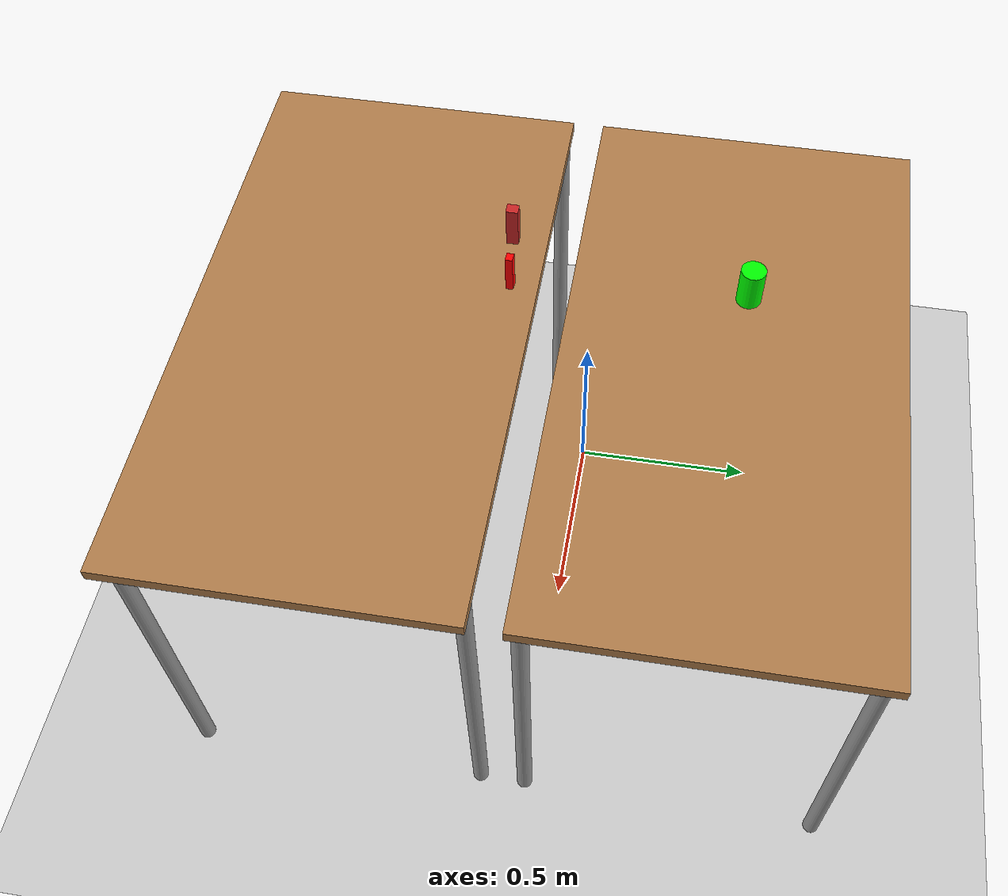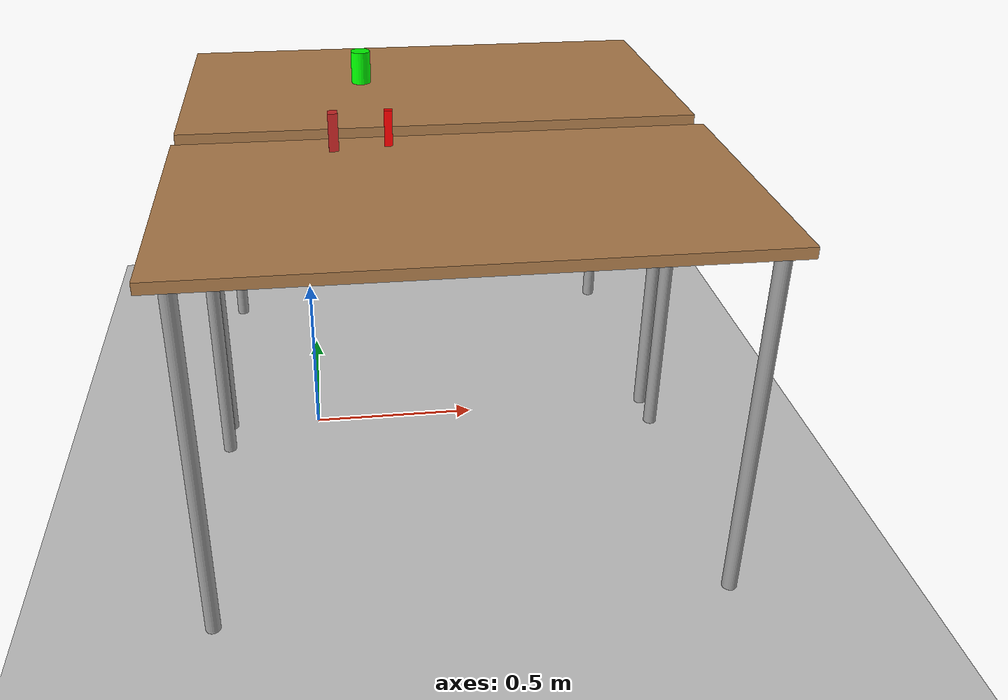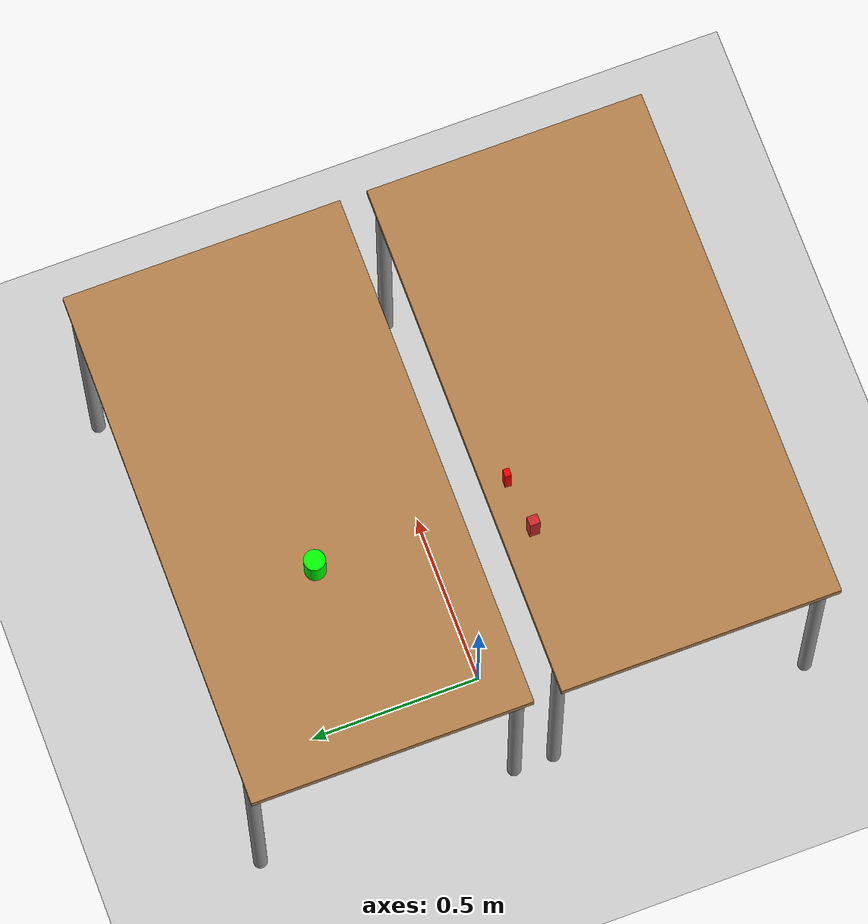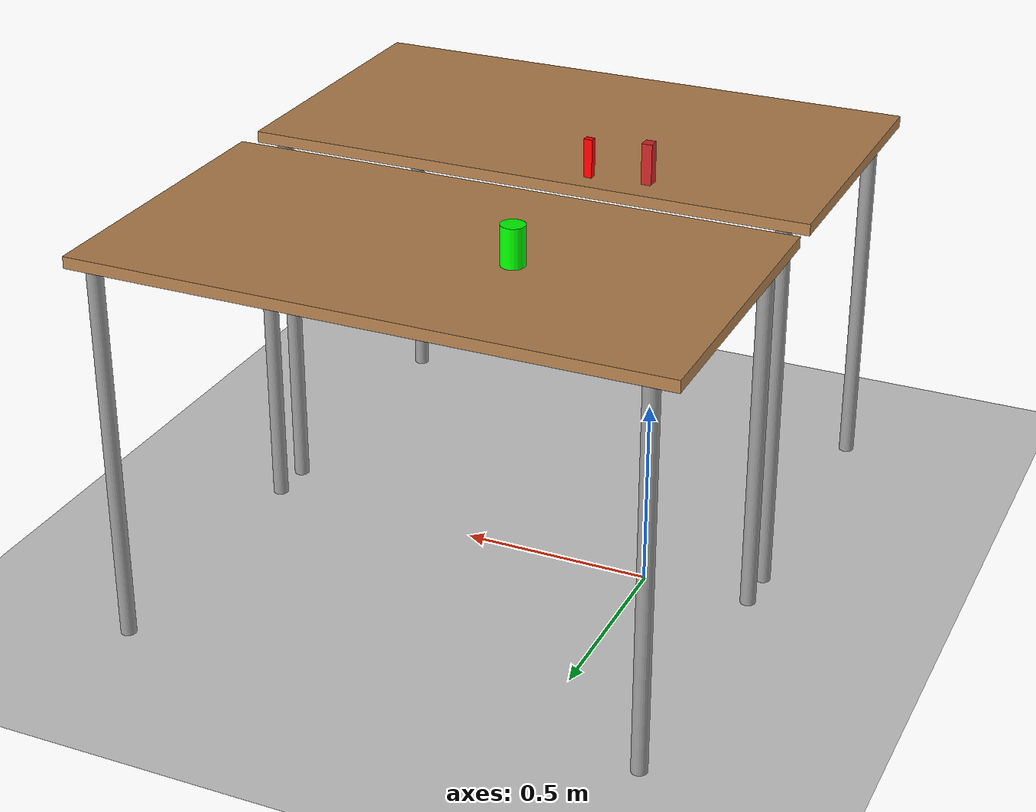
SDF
<sdf version="1.6">
 <world name="default">
  <light name="sun" type="directional">
   <pose>0 0 10 0 -0 0</pose>
   <diffuse>0.8 0.8 0.8 1</diffuse>
   <specular>0.2 0.2 0.2 1</specular>
   <attenuation>
    <range>1000</range>
    <constant>0.9</constant>
    <linear>0.01</linear>
    <quadratic>0.001</quadratic>
   </attenuation>
   <direction>-0.5 0.1 -0.9</direction>
  </light>
  <model name="ground_plane">
   <static>1</static>
   <link name="link">
    <collision name="collision">
     <geometry><plane><normal>0 0 1</normal><size>100 100</size></plane></geometry>
     <surface>
      <contact><collide_bitmask>65535</collide_bitmask></contact>
      <friction><ode><mu>100</mu><mu2>50</mu2></ode></friction>
     </surface>
    </collision>
    <visual name="visual">
     <cast_shadows>0</cast_shadows>
     <geometry><plane><normal>0 0 1</normal><size>100 100</size></plane></geometry>
     <material>
      <script><uri>file://media/materials/scripts/gazebo.material</uri><name>Gazebo/Grey</name></script>
     </material>
    </visual>
   </link>
  </model>
  <gravity>0 0 -9.8</gravity>
  <magnetic_field>6e-06 2.3e-05 -4.2e-05</magnetic_field>
  <atmosphere type="adiabatic"/>
  <physics name="default_physics" default="0" type="ode">
   <max_step_size>0.001</max_step_size>
   <real_time_factor>1</real_time_factor>
   <real_time_update_rate>1000</real_time_update_rate>
  </physics>
  <scene><ambient>0.4 0.4 0.4 1</ambient><background>0.7 0.7 0.7 1</background><shadows>1</shadows></scene>
  <audio><device>default</device></audio>
  <spherical_coordinates>
   <surface_model>EARTH_WGS84</surface_model>
   <latitude_deg>0</latitude_deg>
   <longitude_deg>0</longitude_deg>
   <elevation>0</elevation>
   <heading_deg>0</heading_deg>
  </spherical_coordinates>
  <model name="table">
   <static>1</static>
   <link name="link">
    <collision name="surface">
     <pose>0 0 1 0 -0 0</pose>
     <geometry><box><size>1.5 0.8 0.03</size></box></geometry>
     <surface><friction><ode><mu>0.6</mu><mu2>0.6</mu2></ode></friction></surface>
    </collision>
    <visual name="visual1">
     <pose>0 0 1 0 -0 0</pose>
     <geometry><box><size>1.5 0.8 0.03</size></box></geometry>
     <material>
      <script><uri>file://media/materials/scripts/gazebo.material</uri><name>Gazebo/Wood</name></script>
     </material>
    </visual>
    <collision name="front_left_leg">
     <pose>0.68 0.38 0.5 0 -0 0</pose>
     <geometry><cylinder><radius>0.02</radius><length>1</length></cylinder></geometry>
    </collision>
    <visual name="front_left_leg">
     <pose>0.68 0.38 0.5 0 -0 0</pose>
     <geometry><cylinder><radius>0.02</radius><length>1</length></cylinder></geometry>
     <material>
      <script><uri>file://media/materials/scripts/gazebo.material</uri><name>Gazebo/Grey</name></script>
     </material>
    </visual>
    <collision name="front_right_leg">
     <pose>0.68 -0.38 0.5 0 -0 0</pose>
     <geometry><cylinder><radius>0.02</radius><length>1</length></cylinder></geometry>
    </collision>
    <visual name="front_right_leg">
     <pose>0.68 -0.38 0.5 0 -0 0</pose>
     <geometry><cylinder><radius>0.02</radius><length>1</length></cylinder></geometry>
     <material>
      <script><uri>file://media/materials/scripts/gazebo.material</uri><name>Gazebo/Grey</name></script>
     </material>
    </visual>
    <collision name="back_right_leg">
     <pose>-0.68 -0.38 0.5 0 -0 0</pose>
     <geometry><cylinder><radius>0.02</radius><length>1</length></cylinder></geometry>
    </collision>
    <visual name="back_right_leg">
     <pose>-0.68 -0.38 0.5 0 -0 0</pose>
     <geometry><cylinder><radius>0.02</radius><length>1</length></cylinder></geometry>
     <material>
      <script><uri>file://media/materials/scripts/gazebo.material</uri><name>Gazebo/Grey</name></script>
     </material>
    </visual>
    <collision name="back_left_leg">
     <pose>-0.68 0.38 0.5 0 -0 0</pose>
     <geometry><cylinder><radius>0.02</radius><length>1</length></cylinder></geometry>
    </collision>
    <visual name="back_left_leg">
     <pose>-0.68 0.38 0.5 0 -0 0</pose>
     <geometry><cylinder><radius>0.02</radius><length>1</length></cylinder></geometry>
     <material>
      <script><uri>file://media/materials/scripts/gazebo.material</uri><name>Gazebo/Grey</name></script>
     </material>
    </visual>
   </link>
   <pose>0.4 0.377133 0 0 -0 0</pose>
  </model>
  <model name="table_clone">
   <static>1</static>
   <link name="link">
    <collision name="surface">
     <pose>0 0 1 0 -0 0</pose>
     <geometry><box><size>1.5 0.8 0.03</size></box></geometry>
     <surface><friction><ode><mu>0.6</mu><mu2>0.6</mu2></ode></friction></surface>
    </collision>
    <visual name="visual1">
     <pose>0 0 1 0 -0 0</pose>
     <geometry><box><size>1.5 0.8 0.03</size></box></geometry>
     <material>
      <script><uri>file://media/materials/scripts/gazebo.material</uri><name>Gazebo/Wood</name></script>
     </material>
    </visual>
    <collision name="front_left_leg">
     <pose>0.68 0.38 0.5 0 -0 0</pose>
     <geometry><cylinder><radius>0.02</radius><length>1</length></cylinder></geometry>
    </collision>
    <visual name="front_left_leg">
     <pose>0.68 0.38 0.5 0 -0 0</pose>
     <geometry><cylinder><radius>0.02</radius><length>1</length></cylinder></geometry>
     <material>
      <script><uri>file://media/materials/scripts/gazebo.material</uri><name>Gazebo/Grey</name></script>
     </material>
    </visual>
    <collision name="front_right_leg">
     <pose>0.68 -0.38 0.5 0 -0 0</pose>
     <geometry><cylinder><radius>0.02</radius><length>1</length></cylinder></geometry>
    </collision>
    <visual name="front_right_leg">
     <pose>0.68 -0.38 0.5 0 -0 0</pose>
     <geometry><cylinder><radius>0.02</radius><length>1</length></cylinder></geometry>
     <material>
      <script><uri>file://media/materials/scripts/gazebo.material</uri><name>Gazebo/Grey</name></script>
     </material>
    </visual>
    <collision name="back_right_leg">
     <pose>-0.68 -0.38 0.5 0 -0 0</pose>
     <geometry><cylinder><radius>0.02</radius><length>1</length></cylinder></geometry>
    </collision>
    <visual name="back_right_leg">
     <pose>-0.68 -0.38 0.5 0 -0 0</pose>
     <geometry><cylinder><radius>0.02</radius><length>1</length></cylinder></geometry>
     <material>
      <script><uri>file://media/materials/scripts/gazebo.material</uri><name>Gazebo/Grey</name></script>
     </material>
    </visual>
    <collision name="back_left_leg">
     <pose>-0.68 0.38 0.5 0 -0 0</pose>
     <geometry><cylinder><radius>0.02</radius><length>1</length></cylinder></geometry>
    </collision>
    <visual name="back_left_leg">
     <pose>-0.68 0.38 0.5 0 -0 0</pose>
     <geometry><cylinder><radius>0.02</radius><length>1</length></cylinder></geometry>
     <material>
      <script><uri>file://media/materials/scripts/gazebo.material</uri><name>Gazebo/Grey</name></script>
     </material>
    </visual>
   </link>
   <pose>0.4 -0.50117 0 0 -0 0</pose>
  </model>
  <model name="red_box">
   <link name="link">
    <inertial>
     <mass>0.1</mass>
     <inertia>
      <ixx>0.00010417</ixx>
      <ixy>0</ixy>
      <ixz>0</ixz>
      <iyy>0.00010417</iyy>
      <iyz>0</iyz>
      <izz>4.167e-05</izz>
     </inertia>
    </inertial>
    <visual name="visual">
     <geometry><box><size>0.0221781 0.017834 0.100019</size></box></geometry>
     <material>
      <script><name>Gazebo/Grey</name><uri>file://media/materials/scripts/gazebo.material</uri></script>
      <shader type="vertex"><normal_map>__default__</normal_map></shader>
      <ambient>1 0 0 1</ambient>
      <diffuse>1 0 0 1</diffuse>
      <specular>1 0 0 1</specular>
      <emissive>1 0 0 1</emissive>
     </material>
    </visual>
    <collision name="collision">
     <geometry><box><size>0.0221781 0.017834 0.100019</size></box></geometry>
     <surface>
      <friction>
       <ode><mu>1</mu><mu2>1</mu2><fdir1>0 0 0</fdir1><slip1>0</slip1><slip2>0</slip2></ode>
       <torsional>
        <coefficient>1</coefficient>
        <patch_radius>0</patch_radius>
        <surface_radius>0</surface_radius>
        <use_patch_radius>1</use_patch_radius>
        <ode><slip>0</slip></ode>
       </torsional>
      </friction>
      <bounce><restitution_coefficient>0</restitution_coefficient><threshold>1e+06</threshold></bounce>
      <contact>
       <collide_without_contact>0</collide_without_contact>
       <collide_without_contact_bitmask>1</collide_without_contact_bitmask>
       <collide_bitmask>1</collide_bitmask>
       <ode>
        <soft_cfm>0</soft_cfm>
        <soft_erp>0.2</soft_erp>
        <kp>1e+13</kp>
        <kd>1</kd>
        <max_vel>0.01</max_vel>
        <min_depth>0</min_depth>
       </ode>
       <bullet>
        <split_impulse>1</split_impulse>
        <split_impulse_penetration_threshold>-0.01</split_impulse_penetration_threshold>
        <soft_cfm>0</soft_cfm>
        <soft_erp>0.2</soft_erp>
        <kp>1e+13</kp>
        <kd>1</kd>
       </bullet>
      </contact>
     </surface>
    </collision>
   </link>
   <static>0</static>
   <pose>0.241992 -0.167357 1.06501 -1e-05 1.5e-05 -0.061695</pose>
  </model>
  <model name="green_cylinder">
   <link name="link">
    <inertial>
     <mass>0.1</mass>
     <inertia>
      <ixx>0.00010583</ixx>
      <ixy>0</ixy>
      <ixz>0</ixz>
      <iyy>0.00010583</iyy>
      <iyz>0</iyz>
      <izz>4.5e-05</izz>
     </inertia>
    </inertial>
    <visual name="visual">
     <geometry><cylinder><radius>0.03</radius><length>0.1</length></cylinder></geometry>
     <material>
      <script><name>Gazebo/Grey</name><uri>file://media/materials/scripts/gazebo.material</uri></script>
      <shader type="vertex"><normal_map>__default__</normal_map></shader>
      <ambient>0 1 0 1</ambient>
      <diffuse>0 1 0 1</diffuse>
      <specular>0 1 0 1</specular>
      <emissive>0 1 0 1</emissive>
     </material>
    </visual>
    <collision name="collision">
     <geometry><cylinder><radius>0.03</radius><length>0.1</length></cylinder></geometry>
     <surface>
      <friction>
       <ode><mu>1</mu><mu2>1</mu2><fdir1>0 0 0</fdir1><slip1>0</slip1><slip2>0</slip2></ode>
       <torsional>
        <coefficient>1</coefficient>
        <patch_radius>0</patch_radius>
        <surface_radius>0</surface_radius>
        <use_patch_radius>1</use_patch_radius>
        <ode><slip>0</slip></ode>
       </torsional>
      </friction>
      <bounce><restitution_coefficient>0</restitution_coefficient><threshold>1e+06</threshold></bounce>
      <contact>
       <collide_without_contact>0</collide_without_contact>
       <collide_without_contact_bitmask>1</collide_without_contact_bitmask>
       <collide_bitmask>1</collide_bitmask>
       <ode>
        <soft_cfm>0</soft_cfm>
        <soft_erp>0.2</soft_erp>
        <kp>1e+13</kp>
        <kd>1</kd>
        <max_vel>0.01</max_vel>
        <min_depth>0</min_depth>
       </ode>
       <bullet>
        <split_impulse>1</split_impulse>
        <split_impulse_penetration_threshold>-0.01</split_impulse_penetration_threshold>
        <soft_cfm>0</soft_cfm>
        <soft_erp>0.2</soft_erp>
        <kp>1e+13</kp>
        <kd>1</kd>
       </bullet>
      </contact>
     </surface>
    </collision>
   </link>
   <static>0</static>
   <pose>0.194042 0.397874 1.065 3.5e-05 1.2e-05 -0.015451</pose>
  </model>
  <plugin name="ros_link_attacher_plugin" filename="libgazebo_ros_link_attacher.so"/>
  <model name="red_box2">
   <link name="link">
    <inertial>
     <mass>0.0007479</mass>
     <inertia>
      <ixx>2.75e-06</ixx>
      <ixy>0</ixy>
      <ixz>0</ixz>
      <iyy>2.58e-06</iyy>
      <iyz>0</iyz>
      <izz>5.1e-07</izz>
     </inertia>
    </inertial>
    <visual name="visual">
     <geometry><box><size>0.0268958 0.0295568 0.10629</size></box></geometry>
     <material>
      <script><name>Gazebo/Red</name><uri>file://media/materials/scripts/gazebo.material</uri></script>
      <shader type="vertex"><normal_map>__default__</normal_map></shader>
      <ambient>0.937 0.161 0.161 1</ambient>
      <diffuse>0.937 0.161 0.161 1</diffuse>
      <specular>0.937 0.161 0.161 1</specular>
      <emissive>0.937 0.161 0.161 1</emissive>
     </material>
    </visual>
    <collision name="collision">
     <geometry><box><size>0.0268958 0.0295568 0.10629</size></box></geometry>
     <surface>
      <friction>
       <ode><mu>1</mu><mu2>1</mu2><fdir1>0 0 0</fdir1><slip1>0</slip1><slip2>0</slip2></ode>
       <torsional>
        <coefficient>1</coefficient>
        <patch_radius>0</patch_radius>
        <surface_radius>0</surface_radius>
        <use_patch_radius>1</use_patch_radius>
        <ode><slip>0</slip></ode>
       </torsional>
      </friction>
      <bounce><restitution_coefficient>0</restitution_coefficient><threshold>1e+06</threshold></bounce>
      <contact>
       <collide_without_contact>0</collide_without_contact>
       <collide_without_contact_bitmask>1</collide_without_contact_bitmask>
       <collide_bitmask>1</collide_bitmask>
       <ode>
        <soft_cfm>0</soft_cfm>
        <soft_erp>0.2</soft_erp>
        <kp>1e+13</kp>
        <kd>1</kd>
        <max_vel>0.01</max_vel>
        <min_depth>0</min_depth>
       </ode>
       <bullet>
        <split_impulse>1</split_impulse>
        <split_impulse_penetration_threshold>-0.01</split_impulse_penetration_threshold>
        <soft_cfm>0</soft_cfm>
        <soft_erp>0.2</soft_erp>
        <kp>1e+13</kp>
        <kd>1</kd>
       </bullet>
      </contact>
     </surface>
    </collision>
   </link>
   <static>0</static>
   <pose>0.092526 -0.186385 1.06814 -1e-06 -6e-06 -0.000781</pose>
  </model>
 </world>
</sdf>
